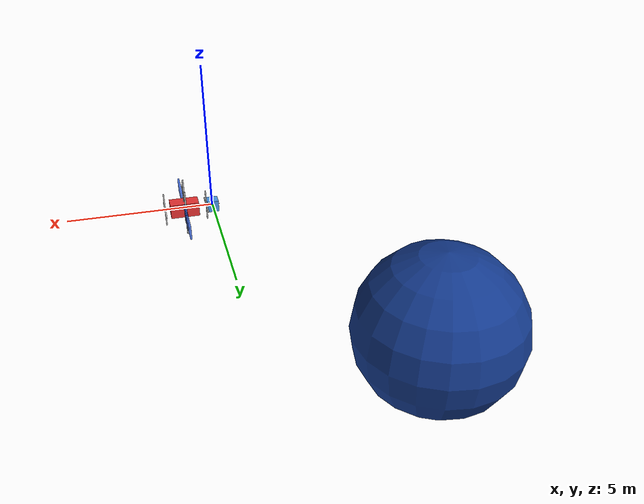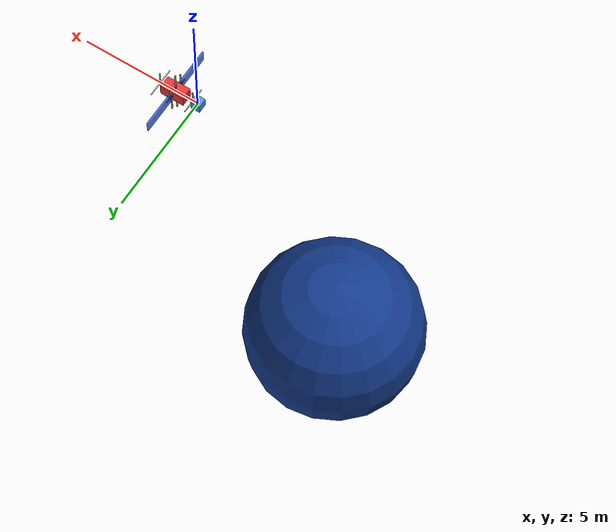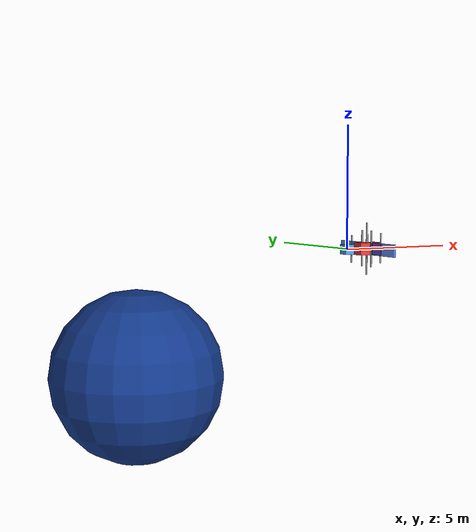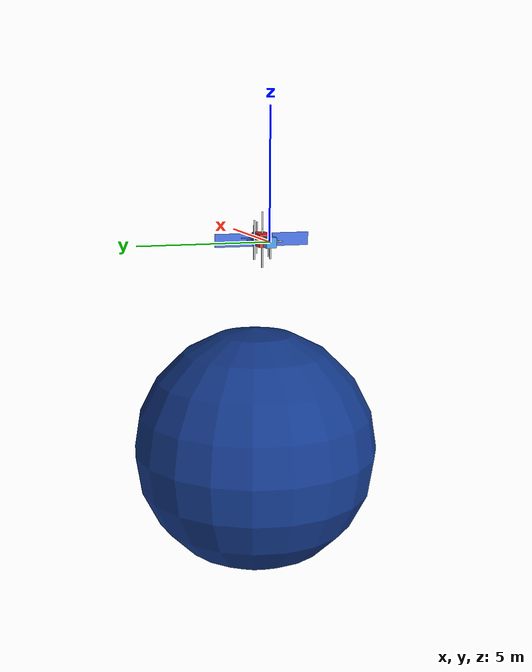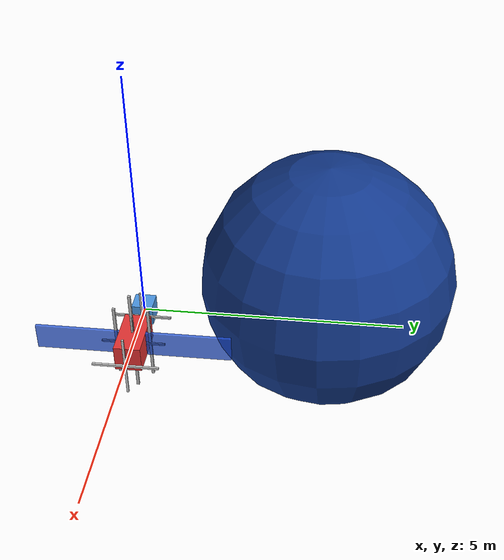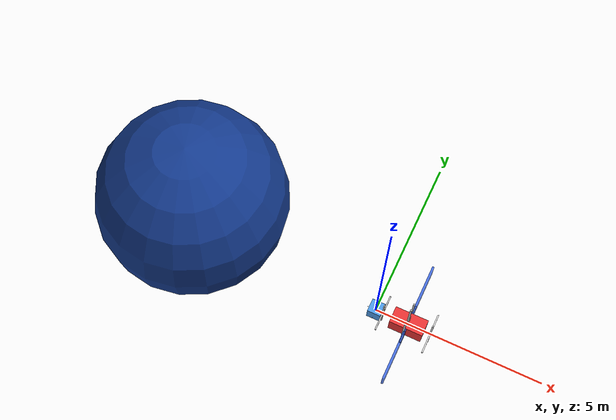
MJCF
<mujoco model="spacecraft_capture_demo">
  <compiler angle="radian" meshdir="../meshes"/>

  <option timestep="0.002" gravity="0 0 0"/>

  <visual>
    <global offwidth="1920" offheight="1080" azimuth="135" elevation="-15"/>
    <quality shadowsize="4096"/>
  </visual>

  <asset>
    <texture name="earth_tex" type="2d" builtin="gradient" width="512" height="512"
             rgb1="0.1 0.3 0.7" rgb2="0.05 0.15 0.4"/>
    <material name="earth_mat" texture="earth_tex" specular="0.1" shininess="0.1"/>
    <material name="svc_body_mat" rgba="0.3 0.6 0.9 1" specular="0.7" shininess="0.4" emission="0.05"/>
    <material name="claw_mat" rgba="0.75 0.75 0.75 1" specular="1.0" shininess="0.7" emission="0.03"/>
    <material name="claw_tip_mat" rgba="0.85 0.85 0.85 1" specular="1.0" shininess="0.8" emission="0.04"/>
    <material name="target_mat" rgba="0.9 0.2 0.2 1" specular="0.6" shininess="0.3" emission="0.03"/>
    <material name="panel_mat" rgba="0.15 0.35 0.9 0.8" specular="0.5" shininess="0.2" emission="0.02"/>
  </asset>

  <default>
    <geom rgba="0.5 0.5 0.5 1"/>
  </default>

  <worldbody>
    <!-- ═══ Earth (orbital context) ═══ -->
    <light name="sun" directional="true" diffuse="1.2 1.2 1.2" specular="0.6 0.6 0.6"
           pos="10 5 -8" dir="-1 -0.3 0.5" castshadow="true"/>
    <light name="ambient" directional="false" diffuse="0.5 0.5 0.6"/>
    <light name="fill" directional="true" diffuse="0.4 0.4 0.5" specular="0.2 0.2 0.2"
           pos="-5 3 5" dir="1 -0.5 -1"/>

    <body name="earth" pos="-8 3 -5">
      <geom name="earth_geom" type="sphere" size="3.5" material="earth_mat"/>
    </body>

    <!-- ═══ Service Satellite + Claw Cage ═══ -->
    <!-- Claw arms extend +X, wrapping around target body (X=1.0, half-size 0.5 -> spans 0.5-1.5) -->
    <body name="service_sat" pos="0 0 0">
      <freejoint/>
      <inertial pos="0 0 0" mass="100"
                diaginertia="16.667 16.667 16.667"/>
      <!-- Central body -->
      <geom name="service_body" type="box" size="0.2 0.2 0.2" material="svc_body_mat"/>

      <!-- Claw base ring on service body +X face -->
      <geom name="claw_base_t" type="box" size="0.02 0.28 0.02"
            pos="0.22 0.28 0"    material="claw_mat"/>
      <geom name="claw_base_b" type="box" size="0.02 0.28 0.02"
            pos="0.22 -0.28 0"   material="claw_mat"/>
      <geom name="claw_base_l" type="box" size="0.02 0.02 0.28"
            pos="0.22 0 0.28"    material="claw_mat"/>
      <geom name="claw_base_r" type="box" size="0.02 0.02 0.28"
            pos="0.22 0 -0.28"   material="claw_mat"/>

      <!-- 4 Long claw arms — extend from X=0.22 to X=1.72, wrapping past target -->
      <geom name="claw_top"    type="box" size="0.025 0.025 0.75"
            pos="0.97 0.32 0"    material="claw_mat"/>
      <geom name="claw_bottom" type="box" size="0.025 0.025 0.75"
            pos="0.97 -0.32 0"   material="claw_mat"/>
      <geom name="claw_left"   type="box" size="0.025 0.025 0.75"
            pos="0.97 0 0.32"    material="claw_mat"/>
      <geom name="claw_right"  type="box" size="0.025 0.025 0.75"
            pos="0.97 0 -0.32"   material="claw_mat"/>

      <!-- Mid crossbars (at target body center X=1.0) -->
      <geom name="claw_mid_t" type="box" size="0.018 0.28 0.018"
            pos="1.0 0.32 0"    material="claw_mat"/>
      <geom name="claw_mid_b" type="box" size="0.018 0.28 0.018"
            pos="1.0 -0.32 0"   material="claw_mat"/>
      <geom name="claw_mid_l" type="box" size="0.018 0.018 0.28"
            pos="1.0 0 0.32"    material="claw_mat"/>
      <geom name="claw_mid_r" type="box" size="0.018 0.018 0.28"
            pos="1.0 0 -0.32"   material="claw_mat"/>

      <!-- Tip crossbars (past target far end X=1.5, at X=1.68) -->
      <geom name="claw_tip_t" type="box" size="0.02 0.30 0.02"
            pos="1.68 0.32 0"    material="claw_tip_mat"/>
      <geom name="claw_tip_b" type="box" size="0.02 0.30 0.02"
            pos="1.68 -0.32 0"   material="claw_tip_mat"/>
      <geom name="claw_tip_l" type="box" size="0.02 0.02 0.30"
            pos="1.68 0 0.32"    material="claw_tip_mat"/>
      <geom name="claw_tip_r" type="box" size="0.02 0.02 0.30"
            pos="1.68 0 -0.32"   material="claw_tip_mat"/>

      <!-- Thruster sites -->
      <site name="s_thr_px" pos="0.25 0 0"    euler="0 1.5708 0"/>
      <site name="s_thr_nx" pos="-0.25 0 0"   euler="0 -1.5708 0"/>
      <site name="s_thr_py" pos="0 0.25 0"    euler="-1.5708 0 0"/>
      <site name="s_thr_ny" pos="0 -0.25 0"   euler="1.5708 0 0"/>
      <site name="s_thr_pz" pos="0 0 0.25"    euler="0 0 0"/>
      <site name="s_thr_nz" pos="0 0 -0.25"   euler="3.1416 0 0"/>
    </body>

    <!-- ═══ Target Spacecraft (sits INSIDE claw cage) ═══ -->
    <!-- Target body at X=1.0 spans X=0.5-1.5; claw arms span X=0.22-1.72 -> fully enclosed -->
    <body name="target_sat" pos="1.0 0 0">
      <freejoint/>
      <inertial pos="0 0 0" mass="500"
                diaginertia="500 500 500"/>
      <geom name="target_body" type="box" size="0.5 0.25 0.25" material="target_mat"/>
      <!-- Solar panels -->
      <geom name="target_panel_py" type="box" size="0.03 0.8 0.25"
            pos="0 1.05 0" material="panel_mat"/>
      <geom name="target_panel_ny" type="box" size="0.03 0.8 0.25"
            pos="0 -1.05 0" material="panel_mat"/>

      <!-- Thruster sites -->
      <site name="t_thr_px" pos="0.53 0 0"    euler="0 1.5708 0"/>
      <site name="t_thr_nx" pos="-0.53 0 0"   euler="0 -1.5708 0"/>
      <site name="t_thr_py" pos="0 0.28 0"    euler="-1.5708 0 0"/>
      <site name="t_thr_ny" pos="0 -0.28 0"   euler="1.5708 0 0"/>
      <site name="t_thr_pz" pos="0 0 0.28"    euler="0 0 0"/>
      <site name="t_thr_nz" pos="0 0 -0.28"   euler="3.1416 0 0"/>
    </body>
  </worldbody>

  <equality>
    <weld name="captured" body1="service_sat" body2="target_sat"
          relpose="1.0 0 0 1 0 0 0"/>
  </equality>

  <actuator>
    <general name="tau_x" site="s_thr_px" gaintype="fixed"/>
    <general name="tau_y" site="s_thr_py" gaintype="fixed"/>
    <general name="tau_z" site="s_thr_pz" gaintype="fixed"/>
  </actuator>
</mujoco>
